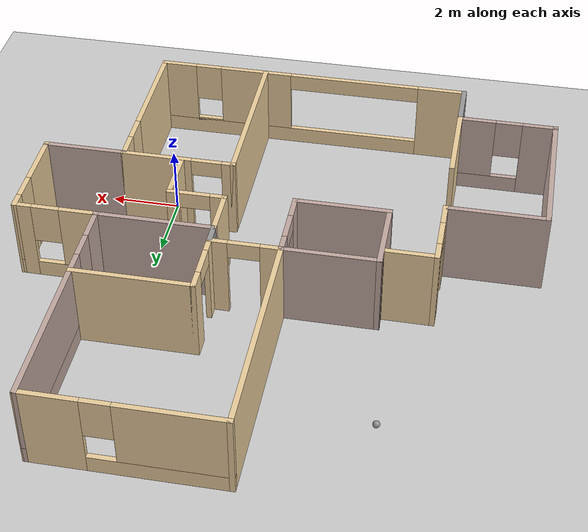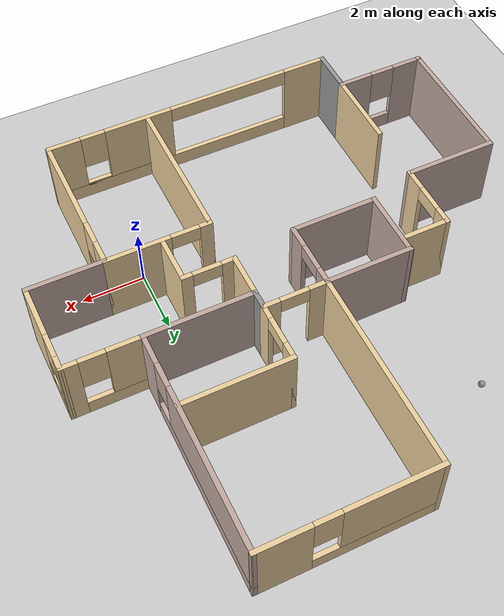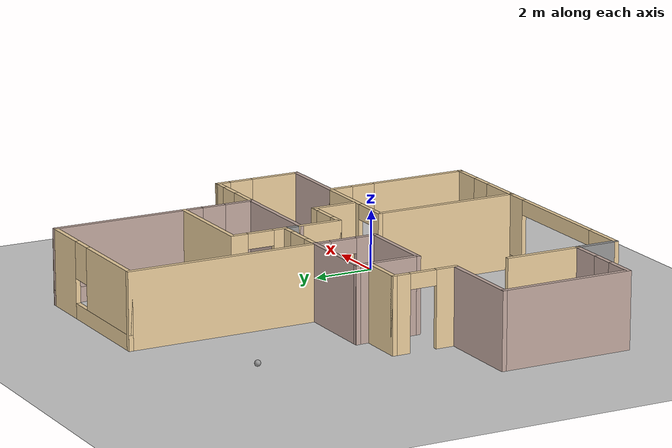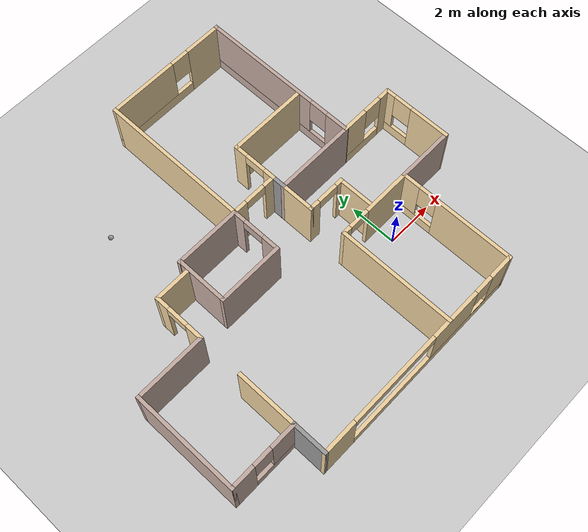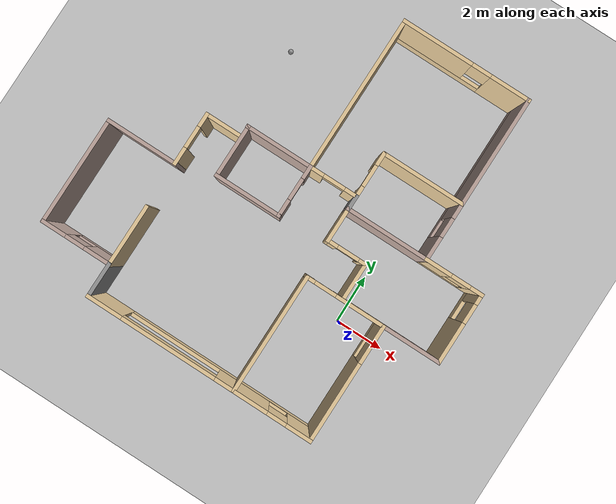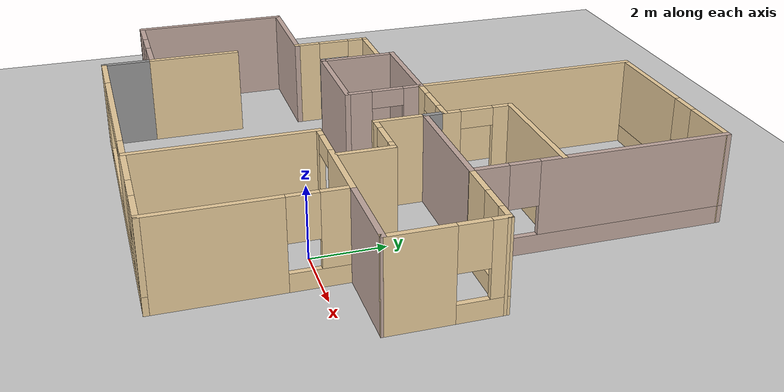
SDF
<sdf version="1.6">
 <world name="default">
  <model name="ground_plane">
   <static>1</static>
   <link name="link">
    <collision name="collision">
     <geometry><plane><normal>0 0 1</normal><size>100 100</size></plane></geometry>
     <surface><friction><ode><mu>100</mu><mu2>50</mu2></ode></friction></surface>
    </collision>
    <visual name="visual">
     <cast_shadows>0</cast_shadows>
     <geometry><plane><normal>0 0 1</normal><size>100 100</size></plane></geometry>
     <material>
      <script><uri>file://media/materials/scripts/gazebo.material</uri><name>Gazebo/Grey</name></script>
     </material>
    </visual>
   </link>
  </model>
  <model name="mybuilding">
   <pose>-3.71799 3.23906 0 0 -0 0</pose>
   <link name="Wall_11">
    <pose>-4.49901 -0.527557 0 0 0 -1.5708</pose>
    <visual name="Wall_11_Visual_0">
     <pose>-0.829746 0 1.25 0 -0 0</pose>
     <geometry><box><size>0.605509 0.15 2.5</size></box></geometry>
     <material>
      <script><uri>file://media/materials/scripts/gazebo.material</uri><name>Gazebo/Grey</name></script>
      <ambient>0.921569 0.807843 0.615686 1</ambient>
     </material>
     <meta><layer>0</layer></meta>
    </visual>
    <collision name="Wall_11_Collision_0">
     <geometry><box><size>0.605509 0.15 2.5</size></box></geometry>
     <pose>-0.829746 0 1.25 0 -0 0</pose>
    </collision>
    <visual name="Wall_11_Visual_1">
     <pose>0.752754 0 1.25 0 -0 0</pose>
     <geometry><box><size>0.759491 0.15 2.5</size></box></geometry>
     <material>
      <script><uri>file://media/materials/scripts/gazebo.material</uri><name>Gazebo/Grey</name></script>
      <ambient>0.921569 0.807843 0.615686 1</ambient>
     </material>
     <meta><layer>0</layer></meta>
    </visual>
    <collision name="Wall_11_Collision_1">
     <geometry><box><size>0.759491 0.15 2.5</size></box></geometry>
     <pose>0.752754 0 1.25 0 -0 0</pose>
    </collision>
    <visual name="Wall_11_Visual_2">
     <pose>-0.076991 0 2.25 0 -0 0</pose>
     <geometry><box><size>0.9 0.15 0.5</size></box></geometry>
     <material>
      <script><uri>file://media/materials/scripts/gazebo.material</uri><name>Gazebo/Grey</name></script>
      <ambient>0.921569 0.807843 0.615686 1</ambient>
     </material>
     <meta><layer>0</layer></meta>
    </visual>
    <collision name="Wall_11_Collision_2">
     <geometry><box><size>0.9 0.15 0.5</size></box></geometry>
     <pose>-0.076991 0 2.25 0 -0 0</pose>
    </collision>
   </link>
   <link name="Wall_12">
    <collision name="Wall_12_Collision">
     <geometry><box><size>3 0.15 2.5</size></box></geometry>
     <pose>0 0 1.25 0 -0 0</pose>
    </collision>
    <visual name="Wall_12_Visual">
     <pose>0 0 1.25 0 -0 0</pose>
     <geometry><box><size>3 0.15 2.5</size></box></geometry>
     <material>
      <script><uri>file://media/materials/scripts/gazebo.material</uri><name>Gazebo/Grey</name></script>
      <ambient>0.760784 0.662745 0.627451 1</ambient>
     </material>
     <meta><layer>0</layer></meta>
    </visual>
    <pose>-5.92401 -1.58506 0 0 -0 3.14159</pose>
   </link>
   <link name="Wall_13">
    <collision name="Wall_13_Collision">
     <geometry><box><size>4.48 0.15 2.5</size></box></geometry>
     <pose>0 0 1.25 0 -0 0</pose>
    </collision>
    <visual name="Wall_13_Visual">
     <pose>0 0 1.25 0 -0 0</pose>
     <geometry><box><size>4.48 0.15 2.5</size></box></geometry>
     <material>
      <script><uri>file://media/materials/scripts/gazebo.material</uri><name>Gazebo/Grey</name></script>
      <ambient>0.760784 0.662745 0.627451 1</ambient>
     </material>
     <meta><layer>0</layer></meta>
    </visual>
    <pose>-7.34901 -3.75006 0 0 0 -1.5708</pose>
   </link>
   <link name="Wall_14">
    <pose>-5.92401 -5.91506 0 0 -0 0</pose>
    <visual name="Wall_14_Visual_0">
     <pose>-0.977046 0 1.25 0 -0 0</pose>
     <geometry><box><size>1.04591 0.15 2.5</size></box></geometry>
     <material>
      <script><uri>file://media/materials/scripts/gazebo.material</uri><name>Gazebo/Grey</name></script>
      <ambient>0.760784 0.662745 0.627451 1</ambient>
     </material>
     <meta><layer>0</layer></meta>
    </visual>
    <collision name="Wall_14_Collision_0">
     <geometry><box><size>1.04591 0.15 2.5</size></box></geometry>
     <pose>-0.977046 0 1.25 0 -0 0</pose>
    </collision>
    <visual name="Wall_14_Visual_1">
     <pose>0.522954 0 0.25 0 -0 0</pose>
     <geometry><box><size>1.95409 0.15 0.5</size></box></geometry>
     <material>
      <script><uri>file://media/materials/scripts/gazebo.material</uri><name>Gazebo/Grey</name></script>
      <ambient>0.760784 0.662745 0.627451 1</ambient>
     </material>
     <meta><layer>0</layer></meta>
    </visual>
    <collision name="Wall_14_Collision_1">
     <geometry><box><size>1.95409 0.15 0.5</size></box></geometry>
     <pose>0.522954 0 0.25 0 -0 0</pose>
    </collision>
    <visual name="Wall_14_Visual_2">
     <pose>0.922954 0 1.5 0 -0 0</pose>
     <geometry><box><size>1.15409 0.15 2</size></box></geometry>
     <material>
      <script><uri>file://media/materials/scripts/gazebo.material</uri><name>Gazebo/Grey</name></script>
      <ambient>0.760784 0.662745 0.627451 1</ambient>
     </material>
     <meta><layer>0</layer></meta>
    </visual>
    <collision name="Wall_14_Collision_2">
     <geometry><box><size>1.15409 0.15 2</size></box></geometry>
     <pose>0.922954 0 1.5 0 -0 0</pose>
    </collision>
    <visual name="Wall_14_Visual_3">
     <pose>-0.054091 0 1.9 0 -0 0</pose>
     <geometry><box><size>0.8 0.15 1.2</size></box></geometry>
     <material>
      <script><uri>file://media/materials/scripts/gazebo.material</uri><name>Gazebo/Grey</name></script>
      <ambient>0.760784 0.662745 0.627451 1</ambient>
     </material>
     <meta><layer>0</layer></meta>
    </visual>
    <collision name="Wall_14_Collision_3">
     <geometry><box><size>0.8 0.15 1.2</size></box></geometry>
     <pose>-0.054091 0 1.9 0 -0 0</pose>
    </collision>
   </link>
   <link name="Wall_15">
    <collision name="Wall_15_Collision">
     <geometry><box><size>1.52 0.15 2.5</size></box></geometry>
     <pose>0 0 1.25 0 -0 0</pose>
    </collision>
    <visual name="Wall_15_Visual">
     <pose>0 0 1.25 0 -0 0</pose>
     <geometry><box><size>1.52 0.15 2.5</size></box></geometry>
     <material>
      <script><uri>file://media/materials/scripts/gazebo.material</uri><name>Gazebo/Grey</name></script>
      <ambient>1 1 1 1</ambient>
     </material>
     <meta><layer>0</layer></meta>
    </visual>
    <pose>-4.49901 -6.60006 0 0 0 -1.5708</pose>
   </link>
   <link name="Wall_16">
    <pose>0.249487 -7.28506 0 0 -0 0</pose>
    <visual name="Wall_16_Visual_0">
     <pose>-4.07389 0 1.25 0 -0 0</pose>
     <geometry><box><size>1.49958 0.15 2.5</size></box></geometry>
     <material>
      <script><uri>file://media/materials/scripts/gazebo.material</uri><name>Gazebo/Grey</name></script>
      <ambient>0.921569 0.807843 0.615686 1</ambient>
     </material>
     <meta><layer>0</layer></meta>
    </visual>
    <collision name="Wall_16_Collision_0">
     <geometry><box><size>1.49958 0.15 2.5</size></box></geometry>
     <pose>-4.07389 0 1.25 0 -0 0</pose>
    </collision>
    <visual name="Wall_16_Visual_1">
     <pose>0.74979 0 0.25 0 -0 0</pose>
     <geometry><box><size>8.14778 0.15 0.5</size></box></geometry>
     <material>
      <script><uri>file://media/materials/scripts/gazebo.material</uri><name>Gazebo/Grey</name></script>
      <ambient>0.921569 0.807843 0.615686 1</ambient>
     </material>
     <meta><layer>0</layer></meta>
    </visual>
    <collision name="Wall_16_Collision_1">
     <geometry><box><size>8.14778 0.15 0.5</size></box></geometry>
     <pose>0.74979 0 0.25 0 -0 0</pose>
    </collision>
    <visual name="Wall_16_Visual_2">
     <pose>1.79558 0 1.5 0 -0 0</pose>
     <geometry><box><size>2.23937 0.15 2</size></box></geometry>
     <material>
      <script><uri>file://media/materials/scripts/gazebo.material</uri><name>Gazebo/Grey</name></script>
      <ambient>0.921569 0.807843 0.615686 1</ambient>
     </material>
     <meta><layer>0</layer></meta>
    </visual>
    <collision name="Wall_16_Collision_2">
     <geometry><box><size>2.23937 0.15 2</size></box></geometry>
     <pose>1.79558 0 1.5 0 -0 0</pose>
    </collision>
    <visual name="Wall_16_Visual_3">
     <pose>4.26947 0 1.5 0 -0 0</pose>
     <geometry><box><size>1.10841 0.15 2</size></box></geometry>
     <material>
      <script><uri>file://media/materials/scripts/gazebo.material</uri><name>Gazebo/Grey</name></script>
      <ambient>0.921569 0.807843 0.615686 1</ambient>
     </material>
     <meta><layer>0</layer></meta>
    </visual>
    <collision name="Wall_16_Collision_3">
     <geometry><box><size>1.10841 0.15 2</size></box></geometry>
     <pose>4.26947 0 1.5 0 -0 0</pose>
    </collision>
    <visual name="Wall_16_Visual_4">
     <pose>3.31527 0 0.5 0 -0 0</pose>
     <geometry><box><size>0.8 0.15 0.1</size></box></geometry>
     <material>
      <script><uri>file://media/materials/scripts/gazebo.material</uri><name>Gazebo/Grey</name></script>
      <ambient>0.921569 0.807843 0.615686 1</ambient>
     </material>
     <meta><layer>0</layer></meta>
    </visual>
    <collision name="Wall_16_Collision_4">
     <geometry><box><size>0.8 0.15 0.1</size></box></geometry>
     <pose>3.31527 0 0.5 0 -0 0</pose>
    </collision>
    <visual name="Wall_16_Visual_5">
     <pose>3.31527 0 1.9 0 -0 0</pose>
     <geometry><box><size>0.8 0.15 1.2</size></box></geometry>
     <material>
      <script><uri>file://media/materials/scripts/gazebo.material</uri><name>Gazebo/Grey</name></script>
      <ambient>0.921569 0.807843 0.615686 1</ambient>
     </material>
     <meta><layer>0</layer></meta>
    </visual>
    <collision name="Wall_16_Collision_5">
     <geometry><box><size>0.8 0.15 1.2</size></box></geometry>
     <pose>3.31527 0 1.9 0 -0 0</pose>
    </collision>
    <visual name="Wall_16_Visual_6">
     <pose>-1.3241 0 2.25 0 -0 0</pose>
     <geometry><box><size>4 0.15 0.5</size></box></geometry>
     <material>
      <script><uri>file://media/materials/scripts/gazebo.material</uri><name>Gazebo/Grey</name></script>
      <ambient>0.921569 0.807843 0.615686 1</ambient>
     </material>
     <meta><layer>0</layer></meta>
    </visual>
    <collision name="Wall_16_Collision_6">
     <geometry><box><size>4 0.15 0.5</size></box></geometry>
     <pose>-1.3241 0 2.25 0 -0 0</pose>
    </collision>
   </link>
   <link name="Wall_17">
    <pose>4.99799 -4.86006 0 0 -0 1.5708</pose>
    <visual name="Wall_17_Visual_0">
     <pose>-0.82328 0 1.25 0 -0 0</pose>
     <geometry><box><size>3.35344 0.15 2.5</size></box></geometry>
     <material>
      <script><uri>file://media/materials/scripts/gazebo.material</uri><name>Gazebo/Grey</name></script>
      <ambient>0.921569 0.807843 0.615686 1</ambient>
     </material>
     <meta><layer>0</layer></meta>
    </visual>
    <collision name="Wall_17_Collision_0">
     <geometry><box><size>3.35344 0.15 2.5</size></box></geometry>
     <pose>-0.82328 0 1.25 0 -0 0</pose>
    </collision>
    <visual name="Wall_17_Visual_1">
     <pose>1.67672 0 0.25 0 -0 0</pose>
     <geometry><box><size>1.64656 0.15 0.5</size></box></geometry>
     <material>
      <script><uri>file://media/materials/scripts/gazebo.material</uri><name>Gazebo/Grey</name></script>
      <ambient>0.921569 0.807843 0.615686 1</ambient>
     </material>
     <meta><layer>0</layer></meta>
    </visual>
    <collision name="Wall_17_Collision_1">
     <geometry><box><size>1.64656 0.15 0.5</size></box></geometry>
     <pose>1.67672 0 0.25 0 -0 0</pose>
    </collision>
    <visual name="Wall_17_Visual_2">
     <pose>2.07672 0 1.5 0 -0 0</pose>
     <geometry><box><size>0.84656 0.15 2</size></box></geometry>
     <material>
      <script><uri>file://media/materials/scripts/gazebo.material</uri><name>Gazebo/Grey</name></script>
      <ambient>0.921569 0.807843 0.615686 1</ambient>
     </material>
     <meta><layer>0</layer></meta>
    </visual>
    <collision name="Wall_17_Collision_2">
     <geometry><box><size>0.84656 0.15 2</size></box></geometry>
     <pose>2.07672 0 1.5 0 -0 0</pose>
    </collision>
    <visual name="Wall_17_Visual_3">
     <pose>1.25344 0 1.9 0 -0 0</pose>
     <geometry><box><size>0.8 0.15 1.2</size></box></geometry>
     <material>
      <script><uri>file://media/materials/scripts/gazebo.material</uri><name>Gazebo/Grey</name></script>
      <ambient>0.921569 0.807843 0.615686 1</ambient>
     </material>
     <meta><layer>0</layer></meta>
    </visual>
    <collision name="Wall_17_Collision_3">
     <geometry><box><size>0.8 0.15 1.2</size></box></geometry>
     <pose>1.25344 0 1.9 0 -0 0</pose>
    </collision>
   </link>
   <link name="Wall_18">
    <collision name="Wall_18_Collision">
     <geometry><box><size>2.5 0.15 2.5</size></box></geometry>
     <pose>0 0 1.25 0 -0 0</pose>
    </collision>
    <visual name="Wall_18_Visual">
     <pose>0 0 1.25 0 -0 0</pose>
     <geometry><box><size>2.5 0.15 2.5</size></box></geometry>
     <material>
      <script><uri>file://media/materials/scripts/gazebo.material</uri><name>Gazebo/Grey</name></script>
      <ambient>0.760784 0.662745 0.627451 1</ambient>
     </material>
     <meta><layer>0</layer></meta>
    </visual>
    <pose>6.17299 -2.43506 0 0 -0 0</pose>
   </link>
   <link name="Wall_19">
    <pose>7.34849 -1.00006 0 0 -0 1.57045</pose>
    <visual name="Wall_19_Visual_0">
     <pose>-0.641701 0 1.25 0 -0 0</pose>
     <geometry><box><size>1.7366 0.15 2.5</size></box></geometry>
     <material>
      <script><uri>file://media/materials/scripts/gazebo.material</uri><name>Gazebo/Grey</name></script>
      <ambient>0.921569 0.807843 0.615686 1</ambient>
     </material>
     <meta><layer>0</layer></meta>
    </visual>
    <collision name="Wall_19_Collision_0">
     <geometry><box><size>1.7366 0.15 2.5</size></box></geometry>
     <pose>-0.641701 0 1.25 0 -0 0</pose>
    </collision>
    <visual name="Wall_19_Visual_1">
     <pose>0.868299 0 0.25 0 -0 0</pose>
     <geometry><box><size>1.2834 0.15 0.5</size></box></geometry>
     <material>
      <script><uri>file://media/materials/scripts/gazebo.material</uri><name>Gazebo/Grey</name></script>
      <ambient>0.921569 0.807843 0.615686 1</ambient>
     </material>
     <meta><layer>0</layer></meta>
    </visual>
    <collision name="Wall_19_Collision_1">
     <geometry><box><size>1.2834 0.15 0.5</size></box></geometry>
     <pose>0.868299 0 0.25 0 -0 0</pose>
    </collision>
    <visual name="Wall_19_Visual_2">
     <pose>1.2683 0 1.5 0 -0 0</pose>
     <geometry><box><size>0.483401 0.15 2</size></box></geometry>
     <material>
      <script><uri>file://media/materials/scripts/gazebo.material</uri><name>Gazebo/Grey</name></script>
      <ambient>0.921569 0.807843 0.615686 1</ambient>
     </material>
     <meta><layer>0</layer></meta>
    </visual>
    <collision name="Wall_19_Collision_2">
     <geometry><box><size>0.483401 0.15 2</size></box></geometry>
     <pose>1.2683 0 1.5 0 -0 0</pose>
    </collision>
    <visual name="Wall_19_Visual_3">
     <pose>0.626599 0 1.9 0 -0 0</pose>
     <geometry><box><size>0.8 0.15 1.2</size></box></geometry>
     <material>
      <script><uri>file://media/materials/scripts/gazebo.material</uri><name>Gazebo/Grey</name></script>
      <ambient>0.921569 0.807843 0.615686 1</ambient>
     </material>
     <meta><layer>0</layer></meta>
    </visual>
    <collision name="Wall_19_Collision_3">
     <geometry><box><size>0.8 0.15 1.2</size></box></geometry>
     <pose>0.626599 0 1.9 0 -0 0</pose>
    </collision>
   </link>
   <link name="Wall_20">
    <pose>6.17349 0.434943 0 0 -0 3.14159</pose>
    <visual name="Wall_20_Visual_0">
     <pose>-0.969557 0 1.25 0 -0 0</pose>
     <geometry><box><size>0.561885 0.15 2.5</size></box></geometry>
     <material>
      <script><uri>file://media/materials/scripts/gazebo.material</uri><name>Gazebo/Grey</name></script>
      <ambient>0.921569 0.807843 0.615686 1</ambient>
     </material>
     <meta><layer>0</layer></meta>
    </visual>
    <collision name="Wall_20_Collision_0">
     <geometry><box><size>0.561885 0.15 2.5</size></box></geometry>
     <pose>-0.969557 0 1.25 0 -0 0</pose>
    </collision>
    <visual name="Wall_20_Visual_1">
     <pose>0.280943 0 0.25 0 -0 0</pose>
     <geometry><box><size>1.93911 0.15 0.5</size></box></geometry>
     <material>
      <script><uri>file://media/materials/scripts/gazebo.material</uri><name>Gazebo/Grey</name></script>
      <ambient>0.921569 0.807843 0.615686 1</ambient>
     </material>
     <meta><layer>0</layer></meta>
    </visual>
    <collision name="Wall_20_Collision_1">
     <geometry><box><size>1.93911 0.15 0.5</size></box></geometry>
     <pose>0.280943 0 0.25 0 -0 0</pose>
    </collision>
    <visual name="Wall_20_Visual_2">
     <pose>0.680943 0 1.5 0 -0 0</pose>
     <geometry><box><size>1.13912 0.15 2</size></box></geometry>
     <material>
      <script><uri>file://media/materials/scripts/gazebo.material</uri><name>Gazebo/Grey</name></script>
      <ambient>0.921569 0.807843 0.615686 1</ambient>
     </material>
     <meta><layer>0</layer></meta>
    </visual>
    <collision name="Wall_20_Collision_2">
     <geometry><box><size>1.13912 0.15 2</size></box></geometry>
     <pose>0.680943 0 1.5 0 -0 0</pose>
    </collision>
    <visual name="Wall_20_Visual_3">
     <pose>-0.288615 0 1.9 0 -0 0</pose>
     <geometry><box><size>0.8 0.15 1.2</size></box></geometry>
     <material>
      <script><uri>file://media/materials/scripts/gazebo.material</uri><name>Gazebo/Grey</name></script>
      <ambient>0.921569 0.807843 0.615686 1</ambient>
     </material>
     <meta><layer>0</layer></meta>
    </visual>
    <collision name="Wall_20_Collision_3">
     <geometry><box><size>0.8 0.15 1.2</size></box></geometry>
     <pose>-0.288615 0 1.9 0 -0 0</pose>
    </collision>
   </link>
   <link name="Wall_21">
    <pose>4.99849 3.85994 0 0 -0 1.57065</pose>
    <visual name="Wall_21_Visual_0">
     <pose>-2.9828 0 1.25 0 -0 0</pose>
     <geometry><box><size>1.03439 0.15 2.5</size></box></geometry>
     <material>
      <script><uri>file://media/materials/scripts/gazebo.material</uri><name>Gazebo/Grey</name></script>
      <ambient>0.760784 0.662745 0.627451 1</ambient>
     </material>
     <meta><layer>0</layer></meta>
    </visual>
    <collision name="Wall_21_Collision_0">
     <geometry><box><size>1.03439 0.15 2.5</size></box></geometry>
     <pose>-2.9828 0 1.25 0 -0 0</pose>
    </collision>
    <visual name="Wall_21_Visual_1">
     <pose>0.517195 0 0.25 0 -0 0</pose>
     <geometry><box><size>5.96561 0.15 0.5</size></box></geometry>
     <material>
      <script><uri>file://media/materials/scripts/gazebo.material</uri><name>Gazebo/Grey</name></script>
      <ambient>0.760784 0.662745 0.627451 1</ambient>
     </material>
     <meta><layer>0</layer></meta>
    </visual>
    <collision name="Wall_21_Collision_1">
     <geometry><box><size>5.96561 0.15 0.5</size></box></geometry>
     <pose>0.517195 0 0.25 0 -0 0</pose>
    </collision>
    <visual name="Wall_21_Visual_2">
     <pose>0.917195 0 1.5 0 -0 0</pose>
     <geometry><box><size>5.16561 0.15 2</size></box></geometry>
     <material>
      <script><uri>file://media/materials/scripts/gazebo.material</uri><name>Gazebo/Grey</name></script>
      <ambient>0.760784 0.662745 0.627451 1</ambient>
     </material>
     <meta><layer>0</layer></meta>
    </visual>
    <collision name="Wall_21_Collision_2">
     <geometry><box><size>5.16561 0.15 2</size></box></geometry>
     <pose>0.917195 0 1.5 0 -0 0</pose>
    </collision>
    <visual name="Wall_21_Visual_3">
     <pose>-2.06561 0 1.9 0 -0 0</pose>
     <geometry><box><size>0.8 0.15 1.2</size></box></geometry>
     <material>
      <script><uri>file://media/materials/scripts/gazebo.material</uri><name>Gazebo/Grey</name></script>
      <ambient>0.760784 0.662745 0.627451 1</ambient>
     </material>
     <meta><layer>0</layer></meta>
    </visual>
    <collision name="Wall_21_Collision_3">
     <geometry><box><size>0.8 0.15 1.2</size></box></geometry>
     <pose>-2.06561 0 1.9 0 -0 0</pose>
    </collision>
   </link>
   <link name="Wall_22">
    <pose>2.33549 7.28494 0 0 -0 3.14159</pose>
    <visual name="Wall_22_Visual_0">
     <pose>-1.89349 0 1.25 0 -0 0</pose>
     <geometry><box><size>1.69001 0.15 2.5</size></box></geometry>
     <material>
      <script><uri>file://media/materials/scripts/gazebo.material</uri><name>Gazebo/Grey</name></script>
      <ambient>0.921569 0.807843 0.615686 1</ambient>
     </material>
     <meta><layer>0</layer></meta>
    </visual>
    <collision name="Wall_22_Collision_0">
     <geometry><box><size>1.69001 0.15 2.5</size></box></geometry>
     <pose>-1.89349 0 1.25 0 -0 0</pose>
    </collision>
    <visual name="Wall_22_Visual_1">
     <pose>0.845005 0 0.25 0 -0 0</pose>
     <geometry><box><size>3.78699 0.15 0.5</size></box></geometry>
     <material>
      <script><uri>file://media/materials/scripts/gazebo.material</uri><name>Gazebo/Grey</name></script>
      <ambient>0.921569 0.807843 0.615686 1</ambient>
     </material>
     <meta><layer>0</layer></meta>
    </visual>
    <collision name="Wall_22_Collision_1">
     <geometry><box><size>3.78699 0.15 0.5</size></box></geometry>
     <pose>0.845005 0 0.25 0 -0 0</pose>
    </collision>
    <visual name="Wall_22_Visual_2">
     <pose>1.245 0 1.5 0 -0 0</pose>
     <geometry><box><size>2.98699 0.15 2</size></box></geometry>
     <material>
      <script><uri>file://media/materials/scripts/gazebo.material</uri><name>Gazebo/Grey</name></script>
      <ambient>0.921569 0.807843 0.615686 1</ambient>
     </material>
     <meta><layer>0</layer></meta>
    </visual>
    <collision name="Wall_22_Collision_2">
     <geometry><box><size>2.98699 0.15 2</size></box></geometry>
     <pose>1.245 0 1.5 0 -0 0</pose>
    </collision>
    <visual name="Wall_22_Visual_3">
     <pose>-0.648491 0 1.9 0 -0 0</pose>
     <geometry><box><size>0.8 0.15 1.2</size></box></geometry>
     <material>
      <script><uri>file://media/materials/scripts/gazebo.material</uri><name>Gazebo/Grey</name></script>
      <ambient>0.921569 0.807843 0.615686 1</ambient>
     </material>
     <meta><layer>0</layer></meta>
    </visual>
    <collision name="Wall_22_Collision_3">
     <geometry><box><size>0.8 0.15 1.2</size></box></geometry>
     <pose>-0.648491 0 1.9 0 -0 0</pose>
    </collision>
   </link>
   <link name="Wall_23">
    <collision name="Wall_23_Collision">
     <geometry><box><size>6.46823 0.15 2.5</size></box></geometry>
     <pose>0 0 1.25 0 -0 0</pose>
    </collision>
    <visual name="Wall_23_Visual">
     <pose>0 0 1.25 0 -0 0</pose>
     <geometry><box><size>6.46823 0.15 2.5</size></box></geometry>
     <material>
      <script><uri>file://media/materials/scripts/gazebo.material</uri><name>Gazebo/Grey</name></script>
      <ambient>0.921569 0.807843 0.615686 1</ambient>
     </material>
     <meta><layer>0</layer></meta>
    </visual>
    <pose>-0.328013 4.12594 0 0 0 -1.5708</pose>
   </link>
   <link name="Wall_24">
    <collision name="Wall_24_Collision">
     <geometry><box><size>2.83849 0.15 2.5</size></box></geometry>
     <pose>0 0 1.25 0 -0 0</pose>
    </collision>
    <visual name="Wall_24_Visual">
     <pose>0 0 1.25 0 -0 0</pose>
     <geometry><box><size>2.83849 0.15 2.5</size></box></geometry>
     <material>
      <script><uri>file://media/materials/scripts/gazebo.material</uri><name>Gazebo/Grey</name></script>
      <ambient>0.760784 0.662745 0.627451 1</ambient>
     </material>
     <meta><layer>0</layer></meta>
    </visual>
    <pose>-1.67226 0.966851 0 0 0 -3.14152</pose>
   </link>
   <link name="Wall_25">
    <collision name="Wall_25_Collision">
     <geometry><box><size>2.24882 0.15 2.5</size></box></geometry>
     <pose>0 0 1.25 0 -0 0</pose>
    </collision>
    <visual name="Wall_25_Visual">
     <pose>0 0 1.25 0 -0 0</pose>
     <geometry><box><size>2.24882 0.15 2.5</size></box></geometry>
     <material>
      <script><uri>file://media/materials/scripts/gazebo.material</uri><name>Gazebo/Grey</name></script>
      <ambient>0.760784 0.662745 0.627451 1</ambient>
     </material>
     <meta><layer>0</layer></meta>
    </visual>
    <pose>-2.99901 -0.082649 0 0 0 -1.5708</pose>
   </link>
   <link name="Wall_29">
    <collision name="Wall_29_Collision">
     <geometry><box><size>2.6 0.15 2.5</size></box></geometry>
     <pose>0 0 1.25 0 -0 0</pose>
    </collision>
    <visual name="Wall_29_Visual">
     <pose>0 0 1.25 0 -0 0</pose>
     <geometry><box><size>2.6 0.15 2.5</size></box></geometry>
     <material>
      <script><uri>file://media/materials/scripts/gazebo.material</uri><name>Gazebo/Grey</name></script>
      <ambient>0.921569 0.807843 0.615686 1</ambient>
     </material>
     <meta><layer>0</layer></meta>
    </visual>
    <pose>-4.49901 -4.69006 0 0 -0 1.5708</pose>
   </link>
   <link name="Wall_32">
    <collision name="Wall_32_Collision">
     <geometry><box><size>4.99 0.15 2.5</size></box></geometry>
     <pose>0 0 1.25 0 -0 0</pose>
    </collision>
    <visual name="Wall_32_Visual">
     <pose>0 0 1.25 0 -0 0</pose>
     <geometry><box><size>4.99 0.15 2.5</size></box></geometry>
     <material>
      <script><uri>file://media/materials/scripts/gazebo.material</uri><name>Gazebo/Grey</name></script>
      <ambient>0.921569 0.807843 0.615686 1</ambient>
     </material>
     <meta><layer>0</layer></meta>
    </visual>
    <pose>1.73699 -4.85506 0 0 -0 1.5708</pose>
   </link>
   <link name="Wall_33">
    <pose>3.36749 -2.43506 0 0 -0 0</pose>
    <visual name="Wall_33_Visual_0">
     <pose>-1.50168 0 1.25 0 -0 0</pose>
     <geometry><box><size>0.408074 0.15 2.5</size></box></geometry>
     <material>
      <script><uri>file://media/materials/scripts/gazebo.material</uri><name>Gazebo/Grey</name></script>
      <ambient>0.921569 0.807843 0.615686 1</ambient>
     </material>
     <meta><layer>0</layer></meta>
    </visual>
    <collision name="Wall_33_Collision_0">
     <geometry><box><size>0.408074 0.15 2.5</size></box></geometry>
     <pose>-1.50168 0 1.25 0 -0 0</pose>
    </collision>
    <visual name="Wall_33_Visual_1">
     <pose>0.654037 0 1.25 0 -0 0</pose>
     <geometry><box><size>2.10337 0.15 2.5</size></box></geometry>
     <material>
      <script><uri>file://media/materials/scripts/gazebo.material</uri><name>Gazebo/Grey</name></script>
      <ambient>0.921569 0.807843 0.615686 1</ambient>
     </material>
     <meta><layer>0</layer></meta>
    </visual>
    <collision name="Wall_33_Collision_1">
     <geometry><box><size>2.10337 0.15 2.5</size></box></geometry>
     <pose>0.654037 0 1.25 0 -0 0</pose>
    </collision>
    <visual name="Wall_33_Visual_2">
     <pose>-0.847648 0 2.25 0 -0 0</pose>
     <geometry><box><size>0.9 0.15 0.5</size></box></geometry>
     <material>
      <script><uri>file://media/materials/scripts/gazebo.material</uri><name>Gazebo/Grey</name></script>
      <ambient>0.921569 0.807843 0.615686 1</ambient>
     </material>
     <meta><layer>0</layer></meta>
    </visual>
    <collision name="Wall_33_Collision_2">
     <geometry><box><size>0.9 0.15 0.5</size></box></geometry>
     <pose>-0.847648 0 2.25 0 -0 0</pose>
    </collision>
   </link>
   <link name="Wall_35">
    <collision name="Wall_35_Collision">
     <geometry><box><size>3.5 0.15 2.5</size></box></geometry>
     <pose>0 0 1.25 0 -0 0</pose>
    </collision>
    <visual name="Wall_35_Visual">
     <pose>0 0 1.25 0 -0 0</pose>
     <geometry><box><size>3.5 0.15 2.5</size></box></geometry>
     <material>
      <script><uri>file://media/materials/scripts/gazebo.material</uri><name>Gazebo/Grey</name></script>
      <ambient>0.760784 0.662745 0.627451 1</ambient>
     </material>
     <meta><layer>0</layer></meta>
    </visual>
    <pose>3.32299 0.434943 0 0 -0 3.14159</pose>
   </link>
   <link name="Wall_36">
    <collision name="Wall_36_Collision">
     <geometry><box><size>1.5 0.15 2.5</size></box></geometry>
     <pose>0 0 1.25 0 -0 0</pose>
    </collision>
    <visual name="Wall_36_Visual">
     <pose>0 0 1.25 0 -0 0</pose>
     <geometry><box><size>1.5 0.15 2.5</size></box></geometry>
     <material>
      <script><uri>file://media/materials/scripts/gazebo.material</uri><name>Gazebo/Grey</name></script>
      <ambient>0.921569 0.807843 0.615686 1</ambient>
     </material>
     <meta><layer>0</layer></meta>
    </visual>
    <pose>1.64799 -0.240057 0 0 0 -1.5708</pose>
   </link>
   <link name="Wall_37">
    <pose>2.44799 -0.915057 0 0 -0 0</pose>
    <visual name="Wall_37_Visual_0">
     <pose>-0.629356 0 1.25 0 -0 0</pose>
     <geometry><box><size>0.491288 0.15 2.5</size></box></geometry>
     <material>
      <script><uri>file://media/materials/scripts/gazebo.material</uri><name>Gazebo/Grey</name></script>
      <ambient>0.921569 0.807843 0.615686 1</ambient>
     </material>
     <meta><layer>0</layer></meta>
    </visual>
    <collision name="Wall_37_Collision_0">
     <geometry><box><size>0.491288 0.15 2.5</size></box></geometry>
     <pose>-0.629356 0 1.25 0 -0 0</pose>
    </collision>
    <visual name="Wall_37_Visual_1">
     <pose>0.695644 0 1.25 0 -0 0</pose>
     <geometry><box><size>0.358712 0.15 2.5</size></box></geometry>
     <material>
      <script><uri>file://media/materials/scripts/gazebo.material</uri><name>Gazebo/Grey</name></script>
      <ambient>0.921569 0.807843 0.615686 1</ambient>
     </material>
     <meta><layer>0</layer></meta>
    </visual>
    <collision name="Wall_37_Collision_1">
     <geometry><box><size>0.358712 0.15 2.5</size></box></geometry>
     <pose>0.695644 0 1.25 0 -0 0</pose>
    </collision>
    <visual name="Wall_37_Visual_2">
     <pose>0.066288 0 2.25 0 -0 0</pose>
     <geometry><box><size>0.9 0.15 0.5</size></box></geometry>
     <material>
      <script><uri>file://media/materials/scripts/gazebo.material</uri><name>Gazebo/Grey</name></script>
      <ambient>0.921569 0.807843 0.615686 1</ambient>
     </material>
     <meta><layer>0</layer></meta>
    </visual>
    <collision name="Wall_37_Collision_2">
     <geometry><box><size>0.9 0.15 0.5</size></box></geometry>
     <pose>0.066288 0 2.25 0 -0 0</pose>
    </collision>
   </link>
   <link name="Wall_38">
    <collision name="Wall_38_Collision">
     <geometry><box><size>1.55 0.15 2.5</size></box></geometry>
     <pose>0 0 1.25 0 -0 0</pose>
    </collision>
    <visual name="Wall_38_Visual">
     <pose>0 0 1.25 0 -0 0</pose>
     <geometry><box><size>1.55 0.15 2.5</size></box></geometry>
     <material>
      <script><uri>file://media/materials/scripts/gazebo.material</uri><name>Gazebo/Grey</name></script>
      <ambient>0.921569 0.807843 0.615686 1</ambient>
     </material>
     <meta><layer>0</layer></meta>
    </visual>
    <pose>3.24799 -1.61506 0 0 0 -1.5708</pose>
   </link>
   <link name="Wall_88">
    <collision name="Wall_88_Collision">
     <geometry><box><size>2.82135 0.15 2.5</size></box></geometry>
     <pose>0 0 1.25 0 -0 0</pose>
    </collision>
    <visual name="Wall_88_Visual">
     <pose>0 0 1.25 0 -0 0</pose>
     <geometry><box><size>2.82135 0.15 2.5</size></box></geometry>
     <material>
      <script><uri>file://media/materials/scripts/gazebo.material</uri><name>Gazebo/Grey</name></script>
      <ambient>0.760784 0.662745 0.627451 1</ambient>
     </material>
     <meta><layer>0</layer></meta>
    </visual>
    <pose>-1.66351 -1.13206 0 0 -0 0</pose>
   </link>
   <link name="Wall_89">
    <pose>-0.328013 -0.082556 0 0 -0 1.5708</pose>
    <visual name="Wall_89_Visual_0">
     <pose>-0.743113 0 1.25 0 -0 0</pose>
     <geometry><box><size>0.762589 0.15 2.5</size></box></geometry>
     <material>
      <script><uri>file://media/materials/scripts/gazebo.material</uri><name>Gazebo/Grey</name></script>
      <ambient>0.760784 0.662745 0.627451 1</ambient>
     </material>
     <meta><layer>0</layer></meta>
    </visual>
    <collision name="Wall_89_Collision_0">
     <geometry><box><size>0.762589 0.15 2.5</size></box></geometry>
     <pose>-0.743113 0 1.25 0 -0 0</pose>
    </collision>
    <visual name="Wall_89_Visual_1">
     <pose>0.831295 0 1.25 0 -0 0</pose>
     <geometry><box><size>0.586226 0.15 2.5</size></box></geometry>
     <material>
      <script><uri>file://media/materials/scripts/gazebo.material</uri><name>Gazebo/Grey</name></script>
      <ambient>0.760784 0.662745 0.627451 1</ambient>
     </material>
     <meta><layer>0</layer></meta>
    </visual>
    <collision name="Wall_89_Collision_1">
     <geometry><box><size>0.586226 0.15 2.5</size></box></geometry>
     <pose>0.831295 0 1.25 0 -0 0</pose>
    </collision>
    <visual name="Wall_89_Visual_2">
     <pose>0.088182 0 2.25 0 -0 0</pose>
     <geometry><box><size>0.9 0.15 0.5</size></box></geometry>
     <material>
      <script><uri>file://media/materials/scripts/gazebo.material</uri><name>Gazebo/Grey</name></script>
      <ambient>0.760784 0.662745 0.627451 1</ambient>
     </material>
     <meta><layer>0</layer></meta>
    </visual>
    <collision name="Wall_89_Collision_2">
     <geometry><box><size>0.9 0.15 0.5</size></box></geometry>
     <pose>0.088182 0 2.25 0 -0 0</pose>
    </collision>
   </link>
   <link name="Wall_91">
    <collision name="Wall_91_Collision">
     <geometry><box><size>0.682541 0.15 2.5</size></box></geometry>
     <pose>0 0 1.25 0 -0 0</pose>
    </collision>
    <visual name="Wall_91_Visual">
     <pose>0 0 1.25 0 -0 0</pose>
     <geometry><box><size>0.682541 0.15 2.5</size></box></geometry>
     <material>
      <script><uri>file://media/materials/scripts/gazebo.material</uri><name>Gazebo/Grey</name></script>
      <ambient>1 1 1 1</ambient>
     </material>
     <meta><layer>0</layer></meta>
    </visual>
    <pose>1.64799 0.700943 0 0 -0 1.5708</pose>
   </link>
   <link name="Wall_92">
    <pose>0.659987 0.966943 0 0 -0 3.14159</pose>
    <visual name="Wall_92_Visual_0">
     <pose>-0.775821 0 1.25 0 -0 0</pose>
     <geometry><box><size>0.574357 0.15 2.5</size></box></geometry>
     <material>
      <script><uri>file://media/materials/scripts/gazebo.material</uri><name>Gazebo/Grey</name></script>
      <ambient>0.921569 0.807843 0.615686 1</ambient>
     </material>
     <meta><layer>0</layer></meta>
    </visual>
    <collision name="Wall_92_Collision_0">
     <geometry><box><size>0.574357 0.15 2.5</size></box></geometry>
     <pose>-0.775821 0 1.25 0 -0 0</pose>
    </collision>
    <visual name="Wall_92_Visual_1">
     <pose>0.737179 0 1.25 0 -0 0</pose>
     <geometry><box><size>0.651643 0.15 2.5</size></box></geometry>
     <material>
      <script><uri>file://media/materials/scripts/gazebo.material</uri><name>Gazebo/Grey</name></script>
      <ambient>0.921569 0.807843 0.615686 1</ambient>
     </material>
     <meta><layer>0</layer></meta>
    </visual>
    <collision name="Wall_92_Collision_1">
     <geometry><box><size>0.651643 0.15 2.5</size></box></geometry>
     <pose>0.737179 0 1.25 0 -0 0</pose>
    </collision>
    <visual name="Wall_92_Visual_2">
     <pose>-0.038643 0 2.25 0 -0 0</pose>
     <geometry><box><size>0.9 0.15 0.5</size></box></geometry>
     <material>
      <script><uri>file://media/materials/scripts/gazebo.material</uri><name>Gazebo/Grey</name></script>
      <ambient>0.921569 0.807843 0.615686 1</ambient>
     </material>
     <meta><layer>0</layer></meta>
    </visual>
    <collision name="Wall_92_Collision_2">
     <geometry><box><size>0.9 0.15 0.5</size></box></geometry>
     <pose>-0.038643 0 2.25 0 -0 0</pose>
    </collision>
   </link>
   <link name="Wall_94">
    <collision name="Wall_94_Collision">
     <geometry><box><size>1.5 0.15 2.5</size></box></geometry>
     <pose>0 0 1.25 0 -0 0</pose>
    </collision>
    <visual name="Wall_94_Visual">
     <pose>0 0 1.25 0 -0 0</pose>
     <geometry><box><size>1.5 0.15 2.5</size></box></geometry>
     <material>
      <script><uri>file://media/materials/scripts/gazebo.material</uri><name>Gazebo/Grey</name></script>
      <ambient>0.921569 0.807843 0.615686 1</ambient>
     </material>
     <meta><layer>0</layer></meta>
    </visual>
    <pose>-3.82401 0.529943 0 0 -0 0</pose>
   </link>
   <link name="Wall_96">
    <pose>1.64799 1.89194 0 0 -0 1.5708</pose>
    <visual name="Wall_96_Visual_0">
     <pose>-0.743821 0 1.25 0 -0 0</pose>
     <geometry><box><size>0.512358 0.15 2.5</size></box></geometry>
     <material>
      <script><uri>file://media/materials/scripts/gazebo.material</uri><name>Gazebo/Grey</name></script>
      <ambient>0.921569 0.807843 0.615686 1</ambient>
     </material>
     <meta><layer>0</layer></meta>
    </visual>
    <collision name="Wall_96_Collision_0">
     <geometry><box><size>0.512358 0.15 2.5</size></box></geometry>
     <pose>-0.743821 0 1.25 0 -0 0</pose>
    </collision>
    <visual name="Wall_96_Visual_1">
     <pose>0.706179 0 1.25 0 -0 0</pose>
     <geometry><box><size>0.587642 0.15 2.5</size></box></geometry>
     <material>
      <script><uri>file://media/materials/scripts/gazebo.material</uri><name>Gazebo/Grey</name></script>
      <ambient>0.921569 0.807843 0.615686 1</ambient>
     </material>
     <meta><layer>0</layer></meta>
    </visual>
    <collision name="Wall_96_Collision_1">
     <geometry><box><size>0.587642 0.15 2.5</size></box></geometry>
     <pose>0.706179 0 1.25 0 -0 0</pose>
    </collision>
    <visual name="Wall_96_Visual_2">
     <pose>-0.037642 0 2.25 0 -0 0</pose>
     <geometry><box><size>0.9 0.15 0.5</size></box></geometry>
     <material>
      <script><uri>file://media/materials/scripts/gazebo.material</uri><name>Gazebo/Grey</name></script>
      <ambient>0.921569 0.807843 0.615686 1</ambient>
     </material>
     <meta><layer>0</layer></meta>
    </visual>
    <collision name="Wall_96_Collision_2">
     <geometry><box><size>0.9 0.15 0.5</size></box></geometry>
     <pose>-0.037642 0 2.25 0 -0 0</pose>
    </collision>
   </link>
   <link name="Wall_97">
    <collision name="Wall_97_Collision">
     <geometry><box><size>3.5 0.15 2.5</size></box></geometry>
     <pose>0 0 1.25 0 -0 0</pose>
    </collision>
    <visual name="Wall_97_Visual">
     <pose>0 0 1.25 0 -0 0</pose>
     <geometry><box><size>3.5 0.15 2.5</size></box></geometry>
     <material>
      <script><uri>file://media/materials/scripts/gazebo.material</uri><name>Gazebo/Grey</name></script>
      <ambient>0.921569 0.807843 0.615686 1</ambient>
     </material>
     <meta><layer>0</layer></meta>
    </visual>
    <pose>3.32299 2.81694 0 0 -0 0</pose>
   </link>
   <static>1</static>
  </model>
  <model name="my_ball">
   <link name="link_0">
    <inertial>
     <mass>1</mass>
     <inertia><ixx>0.1</ixx><ixy>0</ixy><ixz>0</ixz><iyy>0.1</iyy><iyz>0</iyz><izz>0.1</izz></inertia>
    </inertial>
    <visual name="visual">
     <geometry><sphere><radius>0.1</radius></sphere></geometry>
     <material>
      <lighting>1</lighting>
      <script><uri>file://media/materials/scripts/gazebo.material</uri><name>Gazebo/Grey</name></script>
      <shader type="pixel"><normal_map>__default__</normal_map></shader>
      <ambient>1 1 1 1</ambient>
      <diffuse>1 1 1 1</diffuse>
      <specular>1 1 1 1</specular>
      <emissive>1 1 1 1</emissive>
     </material>
    </visual>
    <collision name="collision">
     <geometry><sphere><radius>0.1</radius></sphere></geometry>
     <surface>
      <friction>
       <ode><mu>1</mu><mu2>1</mu2><fdir1>0 0 0</fdir1><slip1>0</slip1><slip2>0</slip2></ode>
       <torsional>
        <coefficient>1</coefficient>
        <patch_radius>0</patch_radius>
        <surface_radius>0</surface_radius>
        <use_patch_radius>1</use_patch_radius>
        <ode><slip>0</slip></ode>
       </torsional>
      </friction>
      <bounce><restitution_coefficient>0</restitution_coefficient><threshold>1e+06</threshold></bounce>
      <contact>
       <collide_without_contact>0</collide_without_contact>
       <collide_without_contact_bitmask>1</collide_without_contact_bitmask>
       <collide_bitmask>1</collide_bitmask>
       <ode>
        <soft_cfm>0</soft_cfm>
        <soft_erp>0.2</soft_erp>
        <kp>1e+13</kp>
        <kd>1</kd>
        <max_vel>0.01</max_vel>
        <min_depth>0</min_depth>
       </ode>
       <bullet>
        <split_impulse>1</split_impulse>
        <split_impulse_penetration_threshold>-0.01</split_impulse_penetration_threshold>
        <soft_cfm>0</soft_cfm>
        <soft_erp>0.2</soft_erp>
        <kp>1e+13</kp>
        <kd>1</kd>
       </bullet>
      </contact>
     </surface>
    </collision>
   </link>
   <static>0</static>
   <pose>-7.22563 7.84492 0.1 0 -0 0</pose>
  </model>
 </world>
</sdf>
